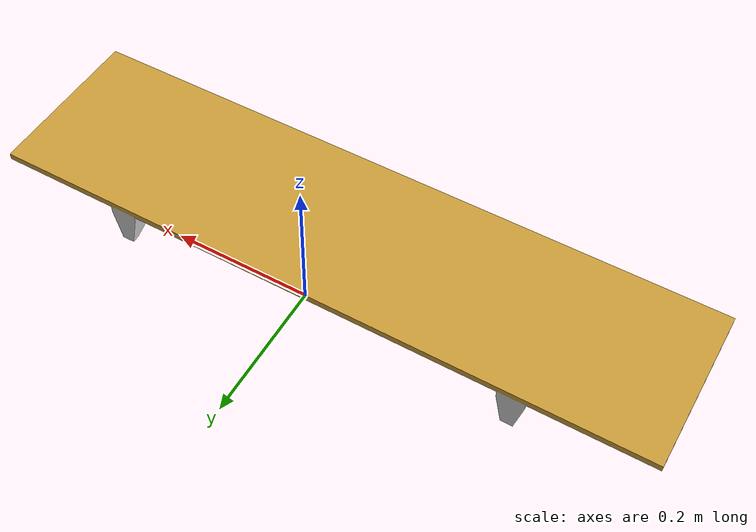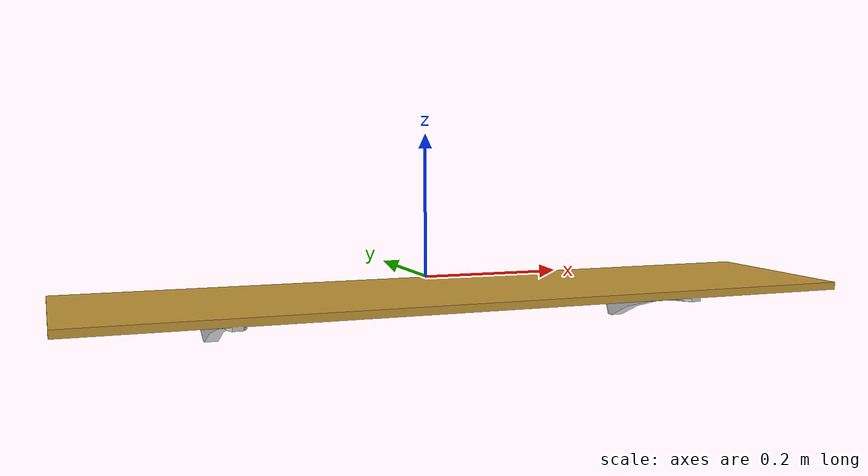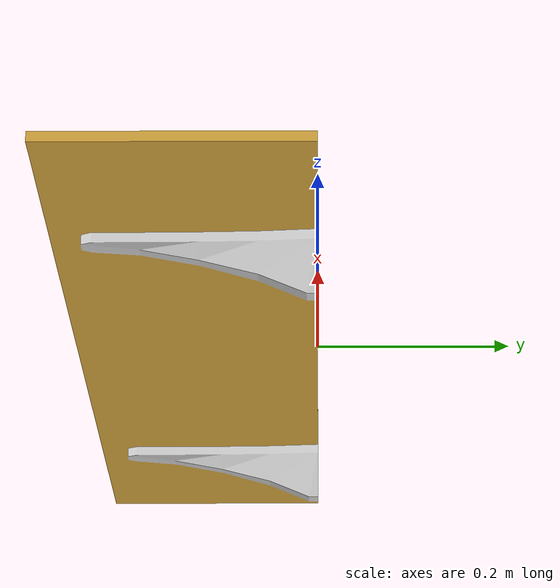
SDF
<?xml version='1.0'?>
<sdf version="1.4">
	<model name="shelf">
		<static>1</static>
		<link name="link">
			<visual name="mesh">
				<geometry>
					<mesh>
						<uri>model://meshes/shelf.dae</uri>
					</mesh>
				</geometry>
			</visual>
			<collision name="collider">
				<pose>0 0 -0.035 0 0 0</pose>
				<geometry>
					<box>
						<size>1 0.25 0.07</size>
					</box>
				</geometry>
			</collision>
		</link>
	</model>
</sdf>
